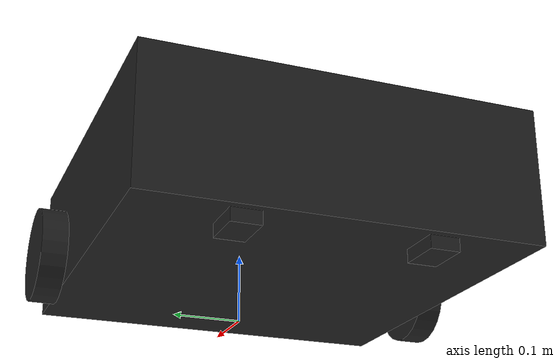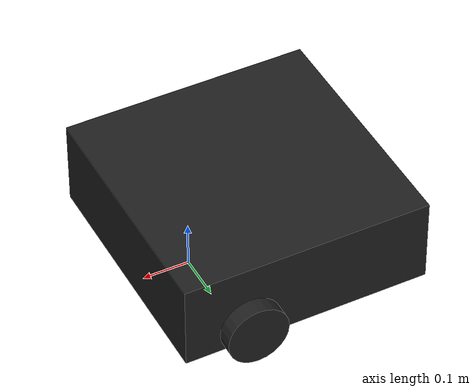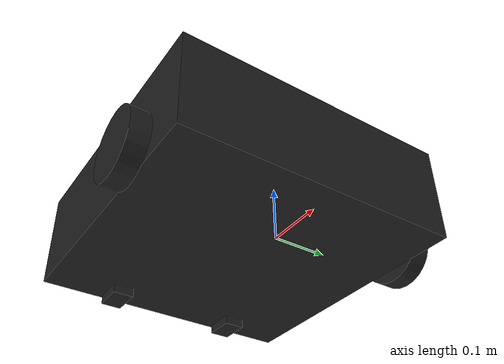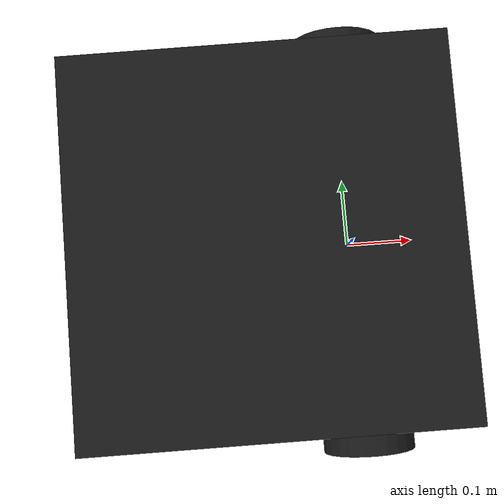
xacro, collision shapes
<?xml version="1.0" ?>
<robot name="turtlebot3_waffle_pi_for_open_manipulator" xmlns:xacro="http://ros.org/wiki/xacro">
  <xacro:include filename="$(find mm_robot_description)/urdf/common_properties.xacro"/>
  <xacro:include filename="$(find mm_robot_description)/urdf/turtlebot3_waffle_pi_for_open_manipulator.gazebo.xacro"/>
  <xacro:property name="mf" value="2"/>

  <link name="base_footprint"/>

  <joint name="base_joint" type="fixed">
    <parent link="base_footprint"/>
    <child link="base_link" />
    <origin xyz="0 0 ${0.010*2}" rpy="0 0 0"/>
  </joint>

  <link name="base_link">
    <visual>
      <origin xyz="${-0.064*mf} 0 0.0" rpy="0 0 0"/>
      <geometry>
        <mesh filename="package://mm_robot_description/meshes/bases/waffle_pi_base_for_open_manipulator.stl" scale="${0.001*mf} ${0.001*mf} ${0.001*mf}"/>
      </geometry>
      <material name="light_black"/>
    </visual>

    <collision>
      <origin xyz="${-0.064*mf} 0 ${0.047*mf}" rpy="0 0 0"/>
      <geometry>
        <box size="${mf*0.266} ${mf*0.266} ${mf*0.094}"/>
      </geometry>
    </collision>

    <inertial>
      <origin xyz="0.0 0 0.0" rpy="0 0 0"/>
      <mass value="${mf*1.6329594e+00}"/>
      <inertia ixx="${mf*mf*mf*1.0}" ixy="0.0" ixz="0.0"
               iyy="${mf*mf*mf*1.0}" iyz="0.0"
               izz="${mf*mf*mf*1.0}" />
    </inertial>
  </link>

  <joint name="wheel_left_joint" type="continuous">
    <parent link="base_link"/>
    <child link="wheel_left_link"/>
    <origin xyz="0.0 ${mf*0.144} ${0.023*mf}" rpy="-1.57 0 0"/>
    <axis xyz="0 0 1"/>
  </joint>

  <link name="wheel_left_link">
    <visual>
      <origin xyz="0 0 0" rpy="1.57 0 0"/>
      <geometry>
        <mesh filename="package://mm_robot_description/meshes/wheels/left_tire.stl" scale="${0.001*mf} ${0.001*mf} ${0.001*mf}"/>
      </geometry>
      <material name="dark"/>
    </visual>

    <collision>
      <origin xyz="0 0 0" rpy="0 0 0"/>
      <geometry>
        <cylinder length="${mf*0.018}" radius="${mf*0.033}"/>
      </geometry>
    </collision>

    <inertial>
      <origin xyz="0 0 0" />
      <mass value="${mf*2.8498940e-02}" />
      <inertia ixx="${mf*mf*mf*1.1175580e-05}" ixy="${mf*mf*mf*-4.2369783e-11}" ixz="${mf*mf*mf*-5.9381719e-09}"
               iyy="${mf*mf*mf*1.1192413e-05}" iyz="${mf*mf*mf*-1.4400107e-11}"
               izz="${mf*mf*mf*2.0712558e-05}" />
      </inertial>
  </link>

  <joint name="wheel_right_joint" type="continuous">
    <parent link="base_link"/>
    <child link="wheel_right_link"/>
    <origin xyz="0.0 ${mf*-0.144} ${mf*0.023}" rpy="-1.57 0 0"/>
    <axis xyz="0 0 1"/>
  </joint>

  <link name="wheel_right_link">
    <visual>
      <origin xyz="0 0 0" rpy="1.57 0 0"/>
      <geometry>
        <mesh filename="package://mm_robot_description/meshes/wheels/right_tire.stl" scale="${0.001*mf} ${0.001*mf} ${0.001*mf}"/>
      </geometry>
      <material name="dark"/>
    </visual>

    <collision>
      <origin xyz="0 ${mf*0.001} 0" rpy="0 0 0"/>
      <geometry>
        <cylinder length="${mf*0.018}" radius="${mf*0.033}"/>
      </geometry>
    </collision>

    <inertial>
      <origin xyz="0 0 0" />
      <mass value="${mf*2.8498940e-02}" />
      <inertia ixx="${mf*mf*mf*1.1175580e-05}" ixy="${mf*mf*mf*-4.2369783e-11}" ixz="${mf*mf*mf*-5.9381719e-09}"
               iyy="${mf*mf*mf*1.1192413e-05}" iyz="${mf*mf*mf*-1.4400107e-11}"
               izz="${mf*mf*mf*2.0712558e-05}" />
      </inertial>
  </link>

  <joint name="caster_back_right_joint" type="fixed">
    <parent link="base_link"/>
    <child link="caster_back_right_link"/>
    <origin xyz="${mf*-0.177} ${mf*-0.064} ${mf*-0.004}" rpy="-1.57 0 0"/>
  </joint>

  <link name="caster_back_right_link">
    <collision>
      <origin xyz="0 ${mf*0.001} 0" rpy="0 0 0"/>
      <geometry>
        <box size="${mf*0.030} ${mf*0.009} ${mf*0.020}"/>
      </geometry>
    </collision>

    <inertial>
      <origin xyz="0 0 0" />
      <mass value="${mf*0.005}" />
      <inertia ixx="${mf*mf*mf*0.001}" ixy="0.0" ixz="0.0"
               iyy="${mf*mf*mf*0.001}" iyz="0.0"
               izz="${mf*mf*mf*0.001}" />
    </inertial>
  </link>

  <joint name="caster_back_left_joint" type="fixed">
    <parent link="base_link"/>
    <child link="caster_back_left_link"/>
    <origin xyz="${mf*-0.177} ${mf*0.064} ${mf*-0.004}" rpy="-1.57 0 0"/>
  </joint>

  <link name="caster_back_left_link">
    <collision>
      <origin xyz="0 ${mf*0.001} 0" rpy="0 0 0"/>
      <geometry>
        <box size="${mf*0.030} ${mf*0.009} ${mf*0.020}"/>
      </geometry>
    </collision>

    <inertial>
      <origin xyz="0 0 0" />
      <mass value="${mf*0.005}" />
      <inertia ixx="${mf*mf*mf*0.001}" ixy="0.0" ixz="0.0"
               iyy="${mf*mf*mf*0.001}" iyz="0.0"
               izz="${mf*mf*mf*0.001}" />
    </inertial>
  </link>

</robot>
